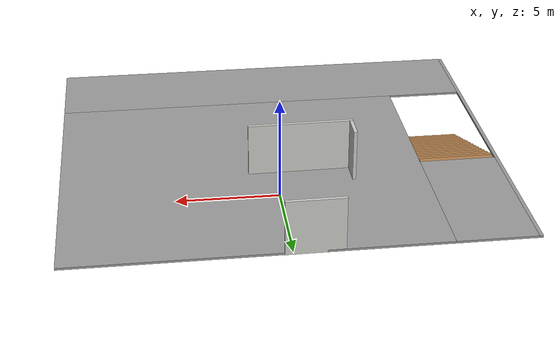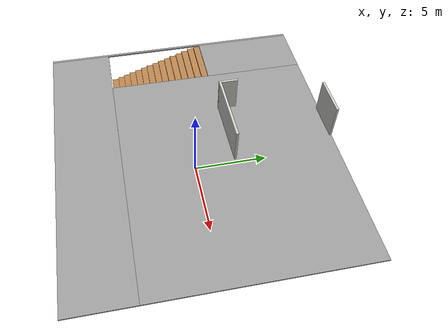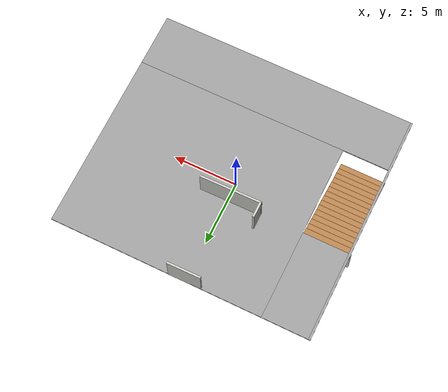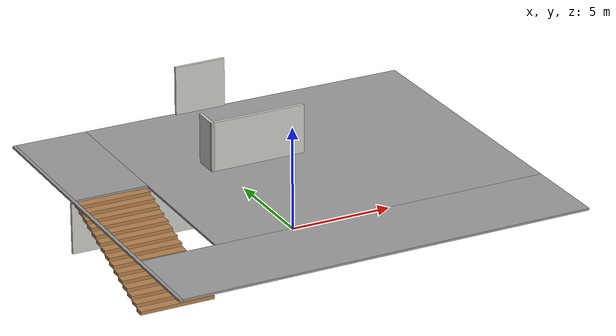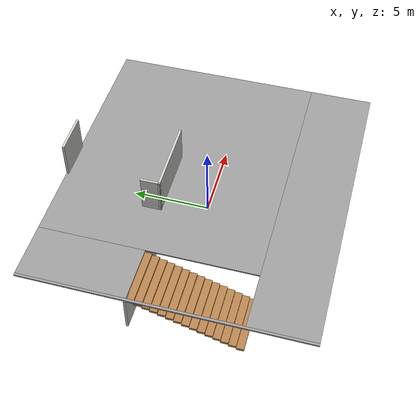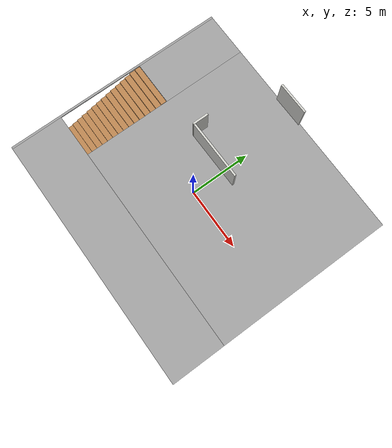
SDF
<sdf version="1.6">
 <model name="home_human">
  <link name="Floor_1">
   <pose>0.111176 -0.025995 2.5 0 -0 0</pose>
   <visual name="Floor_1_Visual_1">
    <pose>0.081642 -6.90167 0.05 0 -0 0</pose>
    <geometry><box><size>19.9327 4.15425 0.1</size></box></geometry>
    <material>
     <script><uri>file://media/materials/scripts/gazebo.material</uri><name>Gazebo/Grey</name></script>
     <ambient>1 1 1 1</ambient>
     <shader type="pixel"/>
    </material>
    <meta><layer>1</layer></meta>
   </visual>
   <visual name="Floor_1_Visual_0">
    <pose>-9.96633 0 0.05 0 -0 0</pose>
    <geometry><box><size>0.163285 17.9576 0.1</size></box></geometry>
    <material>
     <script><uri>file://media/materials/scripts/gazebo.material</uri><name>Gazebo/Grey</name></script>
     <ambient>1 1 1 1</ambient>
     <shader type="pixel"/>
    </material>
    <meta><layer>1</layer></meta>
   </visual>
   <visual name="Floor_1_Visual_2">
    <pose>1.84664 2.07713 0.05 0 -0 0</pose>
    <geometry><box><size>16.4027 13.8033 0.1</size></box></geometry>
    <material>
     <script><uri>file://media/materials/scripts/gazebo.material</uri><name>Gazebo/Grey</name></script>
     <ambient>1 1 1 1</ambient>
     <shader type="pixel"/>
    </material>
    <meta><layer>1</layer></meta>
   </visual>
   <visual name="Floor_1_Visual_3">
    <pose>-8.11969 5.56778 0.05 0 -0 0</pose>
    <geometry><box><size>3.53 6.82204 0.1</size></box></geometry>
    <material>
     <script><uri>file://media/materials/scripts/gazebo.material</uri><name>Gazebo/Grey</name></script>
     <ambient>1 1 1 1</ambient>
     <shader type="pixel"/>
    </material>
    <meta><layer>1</layer></meta>
   </visual>
   <collision name="Floor_1_Collision_2">
    <pose>1.84664 2.07713 0.05 0 -0 0</pose>
    <geometry><box><size>16.4027 13.8033 0.1</size></box></geometry>
    <surface>
     <friction>
      <ode><mu>1</mu><mu2>1</mu2><fdir1>0 0 0</fdir1><slip1>0</slip1><slip2>0</slip2></ode>
      <torsional>
       <coefficient>1</coefficient>
       <patch_radius>0</patch_radius>
       <surface_radius>0</surface_radius>
       <use_patch_radius>1</use_patch_radius>
       <ode><slip>0</slip></ode>
      </torsional>
     </friction>
     <bounce><restitution_coefficient>0</restitution_coefficient><threshold>1e+06</threshold></bounce>
     <contact>
      <collide_without_contact>0</collide_without_contact>
      <collide_without_contact_bitmask>1</collide_without_contact_bitmask>
      <collide_bitmask>1</collide_bitmask>
      <ode>
       <soft_cfm>0</soft_cfm>
       <soft_erp>0.2</soft_erp>
       <kp>1e+13</kp>
       <kd>1</kd>
       <max_vel>0.01</max_vel>
       <min_depth>0</min_depth>
      </ode>
      <bullet>
       <split_impulse>1</split_impulse>
       <split_impulse_penetration_threshold>-0.01</split_impulse_penetration_threshold>
       <soft_cfm>0</soft_cfm>
       <soft_erp>0.2</soft_erp>
       <kp>1e+13</kp>
       <kd>1</kd>
      </bullet>
     </contact>
    </surface>
   </collision>
   <collision name="Floor_1_Collision_1">
    <pose>0.081642 -6.90167 0.05 0 -0 0</pose>
    <geometry><box><size>19.9327 4.15425 0.1</size></box></geometry>
    <surface>
     <friction>
      <ode><mu>1</mu><mu2>1</mu2><fdir1>0 0 0</fdir1><slip1>0</slip1><slip2>0</slip2></ode>
      <torsional>
       <coefficient>1</coefficient>
       <patch_radius>0</patch_radius>
       <surface_radius>0</surface_radius>
       <use_patch_radius>1</use_patch_radius>
       <ode><slip>0</slip></ode>
      </torsional>
     </friction>
     <bounce><restitution_coefficient>0</restitution_coefficient><threshold>1e+06</threshold></bounce>
     <contact>
      <collide_without_contact>0</collide_without_contact>
      <collide_without_contact_bitmask>1</collide_without_contact_bitmask>
      <collide_bitmask>1</collide_bitmask>
      <ode>
       <soft_cfm>0</soft_cfm>
       <soft_erp>0.2</soft_erp>
       <kp>1e+13</kp>
       <kd>1</kd>
       <max_vel>0.01</max_vel>
       <min_depth>0</min_depth>
      </ode>
      <bullet>
       <split_impulse>1</split_impulse>
       <split_impulse_penetration_threshold>-0.01</split_impulse_penetration_threshold>
       <soft_cfm>0</soft_cfm>
       <soft_erp>0.2</soft_erp>
       <kp>1e+13</kp>
       <kd>1</kd>
      </bullet>
     </contact>
    </surface>
   </collision>
   <collision name="Floor_1_Collision_0">
    <pose>-9.96633 0 0.05 0 -0 0</pose>
    <geometry><box><size>0.163285 17.9576 0.1</size></box></geometry>
    <surface>
     <friction>
      <ode><mu>1</mu><mu2>1</mu2><fdir1>0 0 0</fdir1><slip1>0</slip1><slip2>0</slip2></ode>
      <torsional>
       <coefficient>1</coefficient>
       <patch_radius>0</patch_radius>
       <surface_radius>0</surface_radius>
       <use_patch_radius>1</use_patch_radius>
       <ode><slip>0</slip></ode>
      </torsional>
     </friction>
     <bounce><restitution_coefficient>0</restitution_coefficient><threshold>1e+06</threshold></bounce>
     <contact>
      <collide_without_contact>0</collide_without_contact>
      <collide_without_contact_bitmask>1</collide_without_contact_bitmask>
      <collide_bitmask>1</collide_bitmask>
      <ode>
       <soft_cfm>0</soft_cfm>
       <soft_erp>0.2</soft_erp>
       <kp>1e+13</kp>
       <kd>1</kd>
       <max_vel>0.01</max_vel>
       <min_depth>0</min_depth>
      </ode>
      <bullet>
       <split_impulse>1</split_impulse>
       <split_impulse_penetration_threshold>-0.01</split_impulse_penetration_threshold>
       <soft_cfm>0</soft_cfm>
       <soft_erp>0.2</soft_erp>
       <kp>1e+13</kp>
       <kd>1</kd>
      </bullet>
     </contact>
    </surface>
   </collision>
   <collision name="Floor_1_Collision_3">
    <pose>-8.11969 5.56778 0.05 0 -0 0</pose>
    <geometry><box><size>3.53 6.82204 0.1</size></box></geometry>
    <surface>
     <friction>
      <ode><mu>1</mu><mu2>1</mu2><fdir1>0 0 0</fdir1><slip1>0</slip1><slip2>0</slip2></ode>
      <torsional>
       <coefficient>1</coefficient>
       <patch_radius>0</patch_radius>
       <surface_radius>0</surface_radius>
       <use_patch_radius>1</use_patch_radius>
       <ode><slip>0</slip></ode>
      </torsional>
     </friction>
     <bounce><restitution_coefficient>0</restitution_coefficient><threshold>1e+06</threshold></bounce>
     <contact>
      <collide_without_contact>0</collide_without_contact>
      <collide_without_contact_bitmask>1</collide_without_contact_bitmask>
      <collide_bitmask>1</collide_bitmask>
      <ode>
       <soft_cfm>0</soft_cfm>
       <soft_erp>0.2</soft_erp>
       <kp>1e+13</kp>
       <kd>1</kd>
       <max_vel>0.01</max_vel>
       <min_depth>0</min_depth>
      </ode>
      <bullet>
       <split_impulse>1</split_impulse>
       <split_impulse_penetration_threshold>-0.01</split_impulse_penetration_threshold>
       <soft_cfm>0</soft_cfm>
       <soft_erp>0.2</soft_erp>
       <kp>1e+13</kp>
       <kd>1</kd>
      </bullet>
     </contact>
    </surface>
   </collision>
  </link>
  <link name="Stairs_0">
   <visual name="Stairs_0_Visual_13">
    <pose>-8.0684 1.44808 2.25 0 -0 -3.14159</pose>
    <geometry><box><size>3.53 0.46542 0.166667</size></box></geometry>
    <material>
     <script><uri>file://media/materials/scripts/gazebo.material</uri><name>Gazebo/Wood</name></script>
     <ambient>1 1 1 1</ambient>
     <shader type="pixel"/>
    </material>
    <meta><layer>0</layer></meta>
   </visual>
   <visual name="Stairs_0_Visual_1">
    <pose>-8.0684 -4.13696 0.25 0 -0 -3.14159</pose>
    <geometry><box><size>3.53 0.46542 0.166667</size></box></geometry>
    <material>
     <script><uri>file://media/materials/scripts/gazebo.material</uri><name>Gazebo/Wood</name></script>
     <ambient>1 1 1 1</ambient>
     <shader type="pixel"/>
    </material>
    <meta><layer>0</layer></meta>
   </visual>
   <visual name="Stairs_0_Visual_10">
    <pose>-8.0684 0.051817 1.75 0 -0 -3.14159</pose>
    <geometry><box><size>3.53 0.46542 0.166667</size></box></geometry>
    <material>
     <script><uri>file://media/materials/scripts/gazebo.material</uri><name>Gazebo/Wood</name></script>
     <ambient>1 1 1 1</ambient>
     <shader type="pixel"/>
    </material>
    <meta><layer>0</layer></meta>
   </visual>
   <visual name="Stairs_0_Visual_8">
    <pose>-8.0684 -0.879023 1.41667 0 -0 -3.14159</pose>
    <geometry><box><size>3.53 0.46542 0.166667</size></box></geometry>
    <material>
     <script><uri>file://media/materials/scripts/gazebo.material</uri><name>Gazebo/Wood</name></script>
     <ambient>1 1 1 1</ambient>
     <shader type="pixel"/>
    </material>
    <meta><layer>0</layer></meta>
   </visual>
   <visual name="Stairs_0_Visual_0">
    <pose>-8.0684 -4.60238 0.083333 0 -0 -3.14159</pose>
    <geometry><box><size>3.53 0.46542 0.166667</size></box></geometry>
    <material>
     <script><uri>file://media/materials/scripts/gazebo.material</uri><name>Gazebo/Wood</name></script>
     <ambient>1 1 1 1</ambient>
     <shader type="pixel"/>
    </material>
    <meta><layer>0</layer></meta>
   </visual>
   <visual name="Stairs_0_Visual_14">
    <pose>-8.0684 1.9135 2.41667 0 -0 -3.14159</pose>
    <geometry><box><size>3.53 0.46542 0.166667</size></box></geometry>
    <material>
     <script><uri>file://media/materials/scripts/gazebo.material</uri><name>Gazebo/Wood</name></script>
     <ambient>1 1 1 1</ambient>
     <shader type="pixel"/>
    </material>
    <meta><layer>0</layer></meta>
   </visual>
   <visual name="Stairs_0_Visual_5">
    <pose>-8.0684 -2.27528 0.916667 0 -0 -3.14159</pose>
    <geometry><box><size>3.53 0.46542 0.166667</size></box></geometry>
    <material>
     <script><uri>file://media/materials/scripts/gazebo.material</uri><name>Gazebo/Wood</name></script>
     <ambient>1 1 1 1</ambient>
     <shader type="pixel"/>
    </material>
    <meta><layer>0</layer></meta>
   </visual>
   <visual name="Stairs_0_Visual_11">
    <pose>-8.0684 0.517237 1.91667 0 -0 -3.14159</pose>
    <geometry><box><size>3.53 0.46542 0.166667</size></box></geometry>
    <material>
     <script><uri>file://media/materials/scripts/gazebo.material</uri><name>Gazebo/Wood</name></script>
     <ambient>1 1 1 1</ambient>
     <shader type="pixel"/>
    </material>
    <meta><layer>0</layer></meta>
   </visual>
   <visual name="Stairs_0_Visual_2">
    <pose>-8.0684 -3.67154 0.416667 0 -0 -3.14159</pose>
    <geometry><box><size>3.53 0.46542 0.166667</size></box></geometry>
    <material>
     <script><uri>file://media/materials/scripts/gazebo.material</uri><name>Gazebo/Wood</name></script>
     <ambient>1 1 1 1</ambient>
     <shader type="pixel"/>
    </material>
    <meta><layer>0</layer></meta>
   </visual>
   <visual name="Stairs_0_Visual_7">
    <pose>-8.0684 -1.34444 1.25 0 -0 -3.14159</pose>
    <geometry><box><size>3.53 0.46542 0.166667</size></box></geometry>
    <material>
     <script><uri>file://media/materials/scripts/gazebo.material</uri><name>Gazebo/Wood</name></script>
     <ambient>1 1 1 1</ambient>
     <shader type="pixel"/>
    </material>
    <meta><layer>0</layer></meta>
   </visual>
   <visual name="Stairs_0_Visual_12">
    <pose>-8.0684 0.982657 2.08333 0 -0 -3.14159</pose>
    <geometry><box><size>3.53 0.46542 0.166667</size></box></geometry>
    <material>
     <script><uri>file://media/materials/scripts/gazebo.material</uri><name>Gazebo/Wood</name></script>
     <ambient>1 1 1 1</ambient>
     <shader type="pixel"/>
    </material>
    <meta><layer>0</layer></meta>
   </visual>
   <visual name="Stairs_0_Visual_3">
    <pose>-8.0684 -3.20612 0.583333 0 -0 -3.14159</pose>
    <geometry><box><size>3.53 0.46542 0.166667</size></box></geometry>
    <material>
     <script><uri>file://media/materials/scripts/gazebo.material</uri><name>Gazebo/Wood</name></script>
     <ambient>1 1 1 1</ambient>
     <shader type="pixel"/>
    </material>
    <meta><layer>0</layer></meta>
   </visual>
   <visual name="Stairs_0_Visual_9">
    <pose>-8.0684 -0.413603 1.58333 0 -0 -3.14159</pose>
    <geometry><box><size>3.53 0.46542 0.166667</size></box></geometry>
    <material>
     <script><uri>file://media/materials/scripts/gazebo.material</uri><name>Gazebo/Wood</name></script>
     <ambient>1 1 1 1</ambient>
     <shader type="pixel"/>
    </material>
    <meta><layer>0</layer></meta>
   </visual>
   <visual name="Stairs_0_Visual_6">
    <pose>-8.0684 -1.80986 1.08333 0 -0 -3.14159</pose>
    <geometry><box><size>3.53 0.46542 0.166667</size></box></geometry>
    <material>
     <script><uri>file://media/materials/scripts/gazebo.material</uri><name>Gazebo/Wood</name></script>
     <ambient>1 1 1 1</ambient>
     <shader type="pixel"/>
    </material>
    <meta><layer>0</layer></meta>
   </visual>
   <visual name="Stairs_0_Visual_4">
    <pose>-8.0684 -2.7407 0.75 0 -0 -3.14159</pose>
    <geometry><box><size>3.53 0.46542 0.166667</size></box></geometry>
    <material>
     <script><uri>file://media/materials/scripts/gazebo.material</uri><name>Gazebo/Wood</name></script>
     <ambient>1 1 1 1</ambient>
     <shader type="pixel"/>
    </material>
    <meta><layer>0</layer></meta>
   </visual>
   <collision name="Stairs_0_Collision_0">
    <pose>-8.0684 -4.60238 0.083333 0 0 -3.14159</pose>
    <geometry><box><size>3.53 0.46542 0.166667</size></box></geometry>
    <surface>
     <friction>
      <ode><mu>1</mu><mu2>1</mu2><fdir1>0 0 0</fdir1><slip1>0</slip1><slip2>0</slip2></ode>
      <torsional>
       <coefficient>1</coefficient>
       <patch_radius>0</patch_radius>
       <surface_radius>0</surface_radius>
       <use_patch_radius>1</use_patch_radius>
       <ode><slip>0</slip></ode>
      </torsional>
     </friction>
     <bounce><restitution_coefficient>0</restitution_coefficient><threshold>1e+06</threshold></bounce>
     <contact>
      <collide_without_contact>0</collide_without_contact>
      <collide_without_contact_bitmask>1</collide_without_contact_bitmask>
      <collide_bitmask>1</collide_bitmask>
      <ode>
       <soft_cfm>0</soft_cfm>
       <soft_erp>0.2</soft_erp>
       <kp>1e+13</kp>
       <kd>1</kd>
       <max_vel>0.01</max_vel>
       <min_depth>0</min_depth>
      </ode>
      <bullet>
       <split_impulse>1</split_impulse>
       <split_impulse_penetration_threshold>-0.01</split_impulse_penetration_threshold>
       <soft_cfm>0</soft_cfm>
       <soft_erp>0.2</soft_erp>
       <kp>1e+13</kp>
       <kd>1</kd>
      </bullet>
     </contact>
    </surface>
   </collision>
   <collision name="Stairs_0_Collision_8">
    <pose>-8.0684 -0.879023 1.41667 0 0 -3.14159</pose>
    <geometry><box><size>3.53 0.46542 0.166667</size></box></geometry>
    <surface>
     <friction>
      <ode><mu>1</mu><mu2>1</mu2><fdir1>0 0 0</fdir1><slip1>0</slip1><slip2>0</slip2></ode>
      <torsional>
       <coefficient>1</coefficient>
       <patch_radius>0</patch_radius>
       <surface_radius>0</surface_radius>
       <use_patch_radius>1</use_patch_radius>
       <ode><slip>0</slip></ode>
      </torsional>
     </friction>
     <bounce><restitution_coefficient>0</restitution_coefficient><threshold>1e+06</threshold></bounce>
     <contact>
      <collide_without_contact>0</collide_without_contact>
      <collide_without_contact_bitmask>1</collide_without_contact_bitmask>
      <collide_bitmask>1</collide_bitmask>
      <ode>
       <soft_cfm>0</soft_cfm>
       <soft_erp>0.2</soft_erp>
       <kp>1e+13</kp>
       <kd>1</kd>
       <max_vel>0.01</max_vel>
       <min_depth>0</min_depth>
      </ode>
      <bullet>
       <split_impulse>1</split_impulse>
       <split_impulse_penetration_threshold>-0.01</split_impulse_penetration_threshold>
       <soft_cfm>0</soft_cfm>
       <soft_erp>0.2</soft_erp>
       <kp>1e+13</kp>
       <kd>1</kd>
      </bullet>
     </contact>
    </surface>
   </collision>
   <collision name="Stairs_0_Collision_1">
    <pose>-8.0684 -4.13696 0.25 0 0 -3.14159</pose>
    <geometry><box><size>3.53 0.46542 0.166667</size></box></geometry>
    <surface>
     <friction>
      <ode><mu>1</mu><mu2>1</mu2><fdir1>0 0 0</fdir1><slip1>0</slip1><slip2>0</slip2></ode>
      <torsional>
       <coefficient>1</coefficient>
       <patch_radius>0</patch_radius>
       <surface_radius>0</surface_radius>
       <use_patch_radius>1</use_patch_radius>
       <ode><slip>0</slip></ode>
      </torsional>
     </friction>
     <bounce><restitution_coefficient>0</restitution_coefficient><threshold>1e+06</threshold></bounce>
     <contact>
      <collide_without_contact>0</collide_without_contact>
      <collide_without_contact_bitmask>1</collide_without_contact_bitmask>
      <collide_bitmask>1</collide_bitmask>
      <ode>
       <soft_cfm>0</soft_cfm>
       <soft_erp>0.2</soft_erp>
       <kp>1e+13</kp>
       <kd>1</kd>
       <max_vel>0.01</max_vel>
       <min_depth>0</min_depth>
      </ode>
      <bullet>
       <split_impulse>1</split_impulse>
       <split_impulse_penetration_threshold>-0.01</split_impulse_penetration_threshold>
       <soft_cfm>0</soft_cfm>
       <soft_erp>0.2</soft_erp>
       <kp>1e+13</kp>
       <kd>1</kd>
      </bullet>
     </contact>
    </surface>
   </collision>
   <collision name="Stairs_0_Collision_6">
    <pose>-8.0684 -1.80986 1.08333 0 0 -3.14159</pose>
    <geometry><box><size>3.53 0.46542 0.166667</size></box></geometry>
    <surface>
     <friction>
      <ode><mu>1</mu><mu2>1</mu2><fdir1>0 0 0</fdir1><slip1>0</slip1><slip2>0</slip2></ode>
      <torsional>
       <coefficient>1</coefficient>
       <patch_radius>0</patch_radius>
       <surface_radius>0</surface_radius>
       <use_patch_radius>1</use_patch_radius>
       <ode><slip>0</slip></ode>
      </torsional>
     </friction>
     <bounce><restitution_coefficient>0</restitution_coefficient><threshold>1e+06</threshold></bounce>
     <contact>
      <collide_without_contact>0</collide_without_contact>
      <collide_without_contact_bitmask>1</collide_without_contact_bitmask>
      <collide_bitmask>1</collide_bitmask>
      <ode>
       <soft_cfm>0</soft_cfm>
       <soft_erp>0.2</soft_erp>
       <kp>1e+13</kp>
       <kd>1</kd>
       <max_vel>0.01</max_vel>
       <min_depth>0</min_depth>
      </ode>
      <bullet>
       <split_impulse>1</split_impulse>
       <split_impulse_penetration_threshold>-0.01</split_impulse_penetration_threshold>
       <soft_cfm>0</soft_cfm>
       <soft_erp>0.2</soft_erp>
       <kp>1e+13</kp>
       <kd>1</kd>
      </bullet>
     </contact>
    </surface>
   </collision>
   <collision name="Stairs_0_Collision_2">
    <pose>-8.0684 -3.67154 0.416667 0 0 -3.14159</pose>
    <geometry><box><size>3.53 0.46542 0.166667</size></box></geometry>
    <surface>
     <friction>
      <ode><mu>1</mu><mu2>1</mu2><fdir1>0 0 0</fdir1><slip1>0</slip1><slip2>0</slip2></ode>
      <torsional>
       <coefficient>1</coefficient>
       <patch_radius>0</patch_radius>
       <surface_radius>0</surface_radius>
       <use_patch_radius>1</use_patch_radius>
       <ode><slip>0</slip></ode>
      </torsional>
     </friction>
     <bounce><restitution_coefficient>0</restitution_coefficient><threshold>1e+06</threshold></bounce>
     <contact>
      <collide_without_contact>0</collide_without_contact>
      <collide_without_contact_bitmask>1</collide_without_contact_bitmask>
      <collide_bitmask>1</collide_bitmask>
      <ode>
       <soft_cfm>0</soft_cfm>
       <soft_erp>0.2</soft_erp>
       <kp>1e+13</kp>
       <kd>1</kd>
       <max_vel>0.01</max_vel>
       <min_depth>0</min_depth>
      </ode>
      <bullet>
       <split_impulse>1</split_impulse>
       <split_impulse_penetration_threshold>-0.01</split_impulse_penetration_threshold>
       <soft_cfm>0</soft_cfm>
       <soft_erp>0.2</soft_erp>
       <kp>1e+13</kp>
       <kd>1</kd>
      </bullet>
     </contact>
    </surface>
   </collision>
   <collision name="Stairs_0_Collision_3">
    <pose>-8.0684 -3.20612 0.583333 0 0 -3.14159</pose>
    <geometry><box><size>3.53 0.46542 0.166667</size></box></geometry>
    <surface>
     <friction>
      <ode><mu>1</mu><mu2>1</mu2><fdir1>0 0 0</fdir1><slip1>0</slip1><slip2>0</slip2></ode>
      <torsional>
       <coefficient>1</coefficient>
       <patch_radius>0</patch_radius>
       <surface_radius>0</surface_radius>
       <use_patch_radius>1</use_patch_radius>
       <ode><slip>0</slip></ode>
      </torsional>
     </friction>
     <bounce><restitution_coefficient>0</restitution_coefficient><threshold>1e+06</threshold></bounce>
     <contact>
      <collide_without_contact>0</collide_without_contact>
      <collide_without_contact_bitmask>1</collide_without_contact_bitmask>
      <collide_bitmask>1</collide_bitmask>
      <ode>
       <soft_cfm>0</soft_cfm>
       <soft_erp>0.2</soft_erp>
       <kp>1e+13</kp>
       <kd>1</kd>
       <max_vel>0.01</max_vel>
       <min_depth>0</min_depth>
      </ode>
      <bullet>
       <split_impulse>1</split_impulse>
       <split_impulse_penetration_threshold>-0.01</split_impulse_penetration_threshold>
       <soft_cfm>0</soft_cfm>
       <soft_erp>0.2</soft_erp>
       <kp>1e+13</kp>
       <kd>1</kd>
      </bullet>
     </contact>
    </surface>
   </collision>
   <collision name="Stairs_0_Collision_13">
    <pose>-8.0684 1.44808 2.25 0 0 -3.14159</pose>
    <geometry><box><size>3.53 0.46542 0.166667</size></box></geometry>
    <surface>
     <friction>
      <ode><mu>1</mu><mu2>1</mu2><fdir1>0 0 0</fdir1><slip1>0</slip1><slip2>0</slip2></ode>
      <torsional>
       <coefficient>1</coefficient>
       <patch_radius>0</patch_radius>
       <surface_radius>0</surface_radius>
       <use_patch_radius>1</use_patch_radius>
       <ode><slip>0</slip></ode>
      </torsional>
     </friction>
     <bounce><restitution_coefficient>0</restitution_coefficient><threshold>1e+06</threshold></bounce>
     <contact>
      <collide_without_contact>0</collide_without_contact>
      <collide_without_contact_bitmask>1</collide_without_contact_bitmask>
      <collide_bitmask>1</collide_bitmask>
      <ode>
       <soft_cfm>0</soft_cfm>
       <soft_erp>0.2</soft_erp>
       <kp>1e+13</kp>
       <kd>1</kd>
       <max_vel>0.01</max_vel>
       <min_depth>0</min_depth>
      </ode>
      <bullet>
       <split_impulse>1</split_impulse>
       <split_impulse_penetration_threshold>-0.01</split_impulse_penetration_threshold>
       <soft_cfm>0</soft_cfm>
       <soft_erp>0.2</soft_erp>
       <kp>1e+13</kp>
       <kd>1</kd>
      </bullet>
     </contact>
    </surface>
   </collision>
   <collision name="Stairs_0_Collision_10">
    <pose>-8.0684 0.051817 1.75 0 0 -3.14159</pose>
    <geometry><box><size>3.53 0.46542 0.166667</size></box></geometry>
    <surface>
     <friction>
      <ode><mu>1</mu><mu2>1</mu2><fdir1>0 0 0</fdir1><slip1>0</slip1><slip2>0</slip2></ode>
      <torsional>
       <coefficient>1</coefficient>
       <patch_radius>0</patch_radius>
       <surface_radius>0</surface_radius>
       <use_patch_radius>1</use_patch_radius>
       <ode><slip>0</slip></ode>
      </torsional>
     </friction>
     <bounce><restitution_coefficient>0</restitution_coefficient><threshold>1e+06</threshold></bounce>
     <contact>
      <collide_without_contact>0</collide_without_contact>
      <collide_without_contact_bitmask>1</collide_without_contact_bitmask>
      <collide_bitmask>1</collide_bitmask>
      <ode>
       <soft_cfm>0</soft_cfm>
       <soft_erp>0.2</soft_erp>
       <kp>1e+13</kp>
       <kd>1</kd>
       <max_vel>0.01</max_vel>
       <min_depth>0</min_depth>
      </ode>
      <bullet>
       <split_impulse>1</split_impulse>
       <split_impulse_penetration_threshold>-0.01</split_impulse_penetration_threshold>
       <soft_cfm>0</soft_cfm>
       <soft_erp>0.2</soft_erp>
       <kp>1e+13</kp>
       <kd>1</kd>
      </bullet>
     </contact>
    </surface>
   </collision>
   <collision name="Stairs_0_Collision_9">
    <pose>-8.0684 -0.413603 1.58333 0 0 -3.14159</pose>
    <geometry><box><size>3.53 0.46542 0.166667</size></box></geometry>
    <surface>
     <friction>
      <ode><mu>1</mu><mu2>1</mu2><fdir1>0 0 0</fdir1><slip1>0</slip1><slip2>0</slip2></ode>
      <torsional>
       <coefficient>1</coefficient>
       <patch_radius>0</patch_radius>
       <surface_radius>0</surface_radius>
       <use_patch_radius>1</use_patch_radius>
       <ode><slip>0</slip></ode>
      </torsional>
     </friction>
     <bounce><restitution_coefficient>0</restitution_coefficient><threshold>1e+06</threshold></bounce>
     <contact>
      <collide_without_contact>0</collide_without_contact>
      <collide_without_contact_bitmask>1</collide_without_contact_bitmask>
      <collide_bitmask>1</collide_bitmask>
      <ode>
       <soft_cfm>0</soft_cfm>
       <soft_erp>0.2</soft_erp>
       <kp>1e+13</kp>
       <kd>1</kd>
       <max_vel>0.01</max_vel>
       <min_depth>0</min_depth>
      </ode>
      <bullet>
       <split_impulse>1</split_impulse>
       <split_impulse_penetration_threshold>-0.01</split_impulse_penetration_threshold>
       <soft_cfm>0</soft_cfm>
       <soft_erp>0.2</soft_erp>
       <kp>1e+13</kp>
       <kd>1</kd>
      </bullet>
     </contact>
    </surface>
   </collision>
   <collision name="Stairs_0_Collision_7">
    <pose>-8.0684 -1.34444 1.25 0 0 -3.14159</pose>
    <geometry><box><size>3.53 0.46542 0.166667</size></box></geometry>
    <surface>
     <friction>
      <ode><mu>1</mu><mu2>1</mu2><fdir1>0 0 0</fdir1><slip1>0</slip1><slip2>0</slip2></ode>
      <torsional>
       <coefficient>1</coefficient>
       <patch_radius>0</patch_radius>
       <surface_radius>0</surface_radius>
       <use_patch_radius>1</use_patch_radius>
       <ode><slip>0</slip></ode>
      </torsional>
     </friction>
     <bounce><restitution_coefficient>0</restitution_coefficient><threshold>1e+06</threshold></bounce>
     <contact>
      <collide_without_contact>0</collide_without_contact>
      <collide_without_contact_bitmask>1</collide_without_contact_bitmask>
      <collide_bitmask>1</collide_bitmask>
      <ode>
       <soft_cfm>0</soft_cfm>
       <soft_erp>0.2</soft_erp>
       <kp>1e+13</kp>
       <kd>1</kd>
       <max_vel>0.01</max_vel>
       <min_depth>0</min_depth>
      </ode>
      <bullet>
       <split_impulse>1</split_impulse>
       <split_impulse_penetration_threshold>-0.01</split_impulse_penetration_threshold>
       <soft_cfm>0</soft_cfm>
       <soft_erp>0.2</soft_erp>
       <kp>1e+13</kp>
       <kd>1</kd>
      </bullet>
     </contact>
    </surface>
   </collision>
   <collision name="Stairs_0_Collision_14">
    <pose>-8.0684 1.9135 2.41667 0 0 -3.14159</pose>
    <geometry><box><size>3.53 0.46542 0.166667</size></box></geometry>
    <surface>
     <friction>
      <ode><mu>1</mu><mu2>1</mu2><fdir1>0 0 0</fdir1><slip1>0</slip1><slip2>0</slip2></ode>
      <torsional>
       <coefficient>1</coefficient>
       <patch_radius>0</patch_radius>
       <surface_radius>0</surface_radius>
       <use_patch_radius>1</use_patch_radius>
       <ode><slip>0</slip></ode>
      </torsional>
     </friction>
     <bounce><restitution_coefficient>0</restitution_coefficient><threshold>1e+06</threshold></bounce>
     <contact>
      <collide_without_contact>0</collide_without_contact>
      <collide_without_contact_bitmask>1</collide_without_contact_bitmask>
      <collide_bitmask>1</collide_bitmask>
      <ode>
       <soft_cfm>0</soft_cfm>
       <soft_erp>0.2</soft_erp>
       <kp>1e+13</kp>
       <kd>1</kd>
       <max_vel>0.01</max_vel>
       <min_depth>0</min_depth>
      </ode>
      <bullet>
       <split_impulse>1</split_impulse>
       <split_impulse_penetration_threshold>-0.01</split_impulse_penetration_threshold>
       <soft_cfm>0</soft_cfm>
       <soft_erp>0.2</soft_erp>
       <kp>1e+13</kp>
       <kd>1</kd>
      </bullet>
     </contact>
    </surface>
   </collision>
   <collision name="Stairs_0_Collision_12">
    <pose>-8.0684 0.982657 2.08333 0 0 -3.14159</pose>
    <geometry><box><size>3.53 0.46542 0.166667</size></box></geometry>
    <surface>
     <friction>
      <ode><mu>1</mu><mu2>1</mu2><fdir1>0 0 0</fdir1><slip1>0</slip1><slip2>0</slip2></ode>
      <torsional>
       <coefficient>1</coefficient>
       <patch_radius>0</patch_radius>
       <surface_radius>0</surface_radius>
       <use_patch_radius>1</use_patch_radius>
       <ode><slip>0</slip></ode>
      </torsional>
     </friction>
     <bounce><restitution_coefficient>0</restitution_coefficient><threshold>1e+06</threshold></bounce>
     <contact>
      <collide_without_contact>0</collide_without_contact>
      <collide_without_contact_bitmask>1</collide_without_contact_bitmask>
      <collide_bitmask>1</collide_bitmask>
      <ode>
       <soft_cfm>0</soft_cfm>
       <soft_erp>0.2</soft_erp>
       <kp>1e+13</kp>
       <kd>1</kd>
       <max_vel>0.01</max_vel>
       <min_depth>0</min_depth>
      </ode>
      <bullet>
       <split_impulse>1</split_impulse>
       <split_impulse_penetration_threshold>-0.01</split_impulse_penetration_threshold>
       <soft_cfm>0</soft_cfm>
       <soft_erp>0.2</soft_erp>
       <kp>1e+13</kp>
       <kd>1</kd>
      </bullet>
     </contact>
    </surface>
   </collision>
   <collision name="Stairs_0_Collision_4">
    <pose>-8.0684 -2.7407 0.75 0 0 -3.14159</pose>
    <geometry><box><size>3.53 0.46542 0.166667</size></box></geometry>
    <surface>
     <friction>
      <ode><mu>1</mu><mu2>1</mu2><fdir1>0 0 0</fdir1><slip1>0</slip1><slip2>0</slip2></ode>
      <torsional>
       <coefficient>1</coefficient>
       <patch_radius>0</patch_radius>
       <surface_radius>0</surface_radius>
       <use_patch_radius>1</use_patch_radius>
       <ode><slip>0</slip></ode>
      </torsional>
     </friction>
     <bounce><restitution_coefficient>0</restitution_coefficient><threshold>1e+06</threshold></bounce>
     <contact>
      <collide_without_contact>0</collide_without_contact>
      <collide_without_contact_bitmask>1</collide_without_contact_bitmask>
      <collide_bitmask>1</collide_bitmask>
      <ode>
       <soft_cfm>0</soft_cfm>
       <soft_erp>0.2</soft_erp>
       <kp>1e+13</kp>
       <kd>1</kd>
       <max_vel>0.01</max_vel>
       <min_depth>0</min_depth>
      </ode>
      <bullet>
       <split_impulse>1</split_impulse>
       <split_impulse_penetration_threshold>-0.01</split_impulse_penetration_threshold>
       <soft_cfm>0</soft_cfm>
       <soft_erp>0.2</soft_erp>
       <kp>1e+13</kp>
       <kd>1</kd>
      </bullet>
     </contact>
    </surface>
   </collision>
   <collision name="Stairs_0_Collision_11">
    <pose>-8.0684 0.517237 1.91667 0 0 -3.14159</pose>
    <geometry><box><size>3.53 0.46542 0.166667</size></box></geometry>
    <surface>
     <friction>
      <ode><mu>1</mu><mu2>1</mu2><fdir1>0 0 0</fdir1><slip1>0</slip1><slip2>0</slip2></ode>
      <torsional>
       <coefficient>1</coefficient>
       <patch_radius>0</patch_radius>
       <surface_radius>0</surface_radius>
       <use_patch_radius>1</use_patch_radius>
       <ode><slip>0</slip></ode>
      </torsional>
     </friction>
     <bounce><restitution_coefficient>0</restitution_coefficient><threshold>1e+06</threshold></bounce>
     <contact>
      <collide_without_contact>0</collide_without_contact>
      <collide_without_contact_bitmask>1</collide_without_contact_bitmask>
      <collide_bitmask>1</collide_bitmask>
      <ode>
       <soft_cfm>0</soft_cfm>
       <soft_erp>0.2</soft_erp>
       <kp>1e+13</kp>
       <kd>1</kd>
       <max_vel>0.01</max_vel>
       <min_depth>0</min_depth>
      </ode>
      <bullet>
       <split_impulse>1</split_impulse>
       <split_impulse_penetration_threshold>-0.01</split_impulse_penetration_threshold>
       <soft_cfm>0</soft_cfm>
       <soft_erp>0.2</soft_erp>
       <kp>1e+13</kp>
       <kd>1</kd>
      </bullet>
     </contact>
    </surface>
   </collision>
   <collision name="Stairs_0_Collision_5">
    <pose>-8.0684 -2.27528 0.916667 0 0 -3.14159</pose>
    <geometry><box><size>3.53 0.46542 0.166667</size></box></geometry>
    <surface>
     <friction>
      <ode><mu>1</mu><mu2>1</mu2><fdir1>0 0 0</fdir1><slip1>0</slip1><slip2>0</slip2></ode>
      <torsional>
       <coefficient>1</coefficient>
       <patch_radius>0</patch_radius>
       <surface_radius>0</surface_radius>
       <use_patch_radius>1</use_patch_radius>
       <ode><slip>0</slip></ode>
      </torsional>
     </friction>
     <bounce><restitution_coefficient>0</restitution_coefficient><threshold>1e+06</threshold></bounce>
     <contact>
      <collide_without_contact>0</collide_without_contact>
      <collide_without_contact_bitmask>1</collide_without_contact_bitmask>
      <collide_bitmask>1</collide_bitmask>
      <ode>
       <soft_cfm>0</soft_cfm>
       <soft_erp>0.2</soft_erp>
       <kp>1e+13</kp>
       <kd>1</kd>
       <max_vel>0.01</max_vel>
       <min_depth>0</min_depth>
      </ode>
      <bullet>
       <split_impulse>1</split_impulse>
       <split_impulse_penetration_threshold>-0.01</split_impulse_penetration_threshold>
       <soft_cfm>0</soft_cfm>
       <soft_erp>0.2</soft_erp>
       <kp>1e+13</kp>
       <kd>1</kd>
      </bullet>
     </contact>
    </surface>
   </collision>
  </link>
  <link name="Wall_29">
   <pose>-2.62977 2.17159 0 0 -0 3.14159</pose>
   <visual name="Wall_29_Visual">
    <pose>0 0 1.25 0 -0 0</pose>
    <geometry><box><size>14.7036 0.15 2.5</size></box></geometry>
    <material>
     <script><uri>file://media/materials/scripts/gazebo.material</uri><name>Gazebo/CeilingTiled</name></script>
     <ambient>1 1 1 1</ambient>
     <shader type="pixel"/>
    </material>
    <meta><layer>0</layer></meta>
   </visual>
   <collision name="Wall_29_Collision">
    <pose>0 0 1.25 0 -0 0</pose>
    <geometry><box><size>14.7036 0.15 2.5</size></box></geometry>
    <surface>
     <friction>
      <ode><mu>1</mu><mu2>1</mu2><fdir1>0 0 0</fdir1><slip1>0</slip1><slip2>0</slip2></ode>
      <torsional>
       <coefficient>1</coefficient>
       <patch_radius>0</patch_radius>
       <surface_radius>0</surface_radius>
       <use_patch_radius>1</use_patch_radius>
       <ode><slip>0</slip></ode>
      </torsional>
     </friction>
     <bounce><restitution_coefficient>0</restitution_coefficient><threshold>1e+06</threshold></bounce>
     <contact>
      <collide_without_contact>0</collide_without_contact>
      <collide_without_contact_bitmask>1</collide_without_contact_bitmask>
      <collide_bitmask>1</collide_bitmask>
      <ode>
       <soft_cfm>0</soft_cfm>
       <soft_erp>0.2</soft_erp>
       <kp>1e+13</kp>
       <kd>1</kd>
       <max_vel>0.01</max_vel>
       <min_depth>0</min_depth>
      </ode>
      <bullet>
       <split_impulse>1</split_impulse>
       <split_impulse_penetration_threshold>-0.01</split_impulse_penetration_threshold>
       <soft_cfm>0</soft_cfm>
       <soft_erp>0.2</soft_erp>
       <kp>1e+13</kp>
       <kd>1</kd>
      </bullet>
     </contact>
    </surface>
   </collision>
  </link>
  <link name="Wall_37">
   <pose>-2.06777 -0.248407 0 0 0 -1.5708</pose>
   <visual name="Wall_37_Visual">
    <pose>0 0 1.25 0 -0 0</pose>
    <geometry><box><size>5 0.15 2.5</size></box></geometry>
    <material>
     <script><uri>file://media/materials/scripts/gazebo.material</uri><name>Gazebo/CeilingTiled</name></script>
     <ambient>1 1 1 1</ambient>
     <shader type="pixel"/>
    </material>
    <meta><layer>0</layer></meta>
   </visual>
   <collision name="Wall_37_Collision">
    <pose>0 0 1.25 0 -0 0</pose>
    <geometry><box><size>5 0.15 2.5</size></box></geometry>
    <surface>
     <friction>
      <ode><mu>1</mu><mu2>1</mu2><fdir1>0 0 0</fdir1><slip1>0</slip1><slip2>0</slip2></ode>
      <torsional>
       <coefficient>1</coefficient>
       <patch_radius>0</patch_radius>
       <surface_radius>0</surface_radius>
       <use_patch_radius>1</use_patch_radius>
       <ode><slip>0</slip></ode>
      </torsional>
     </friction>
     <bounce><restitution_coefficient>0</restitution_coefficient><threshold>1e+06</threshold></bounce>
     <contact>
      <collide_without_contact>0</collide_without_contact>
      <collide_without_contact_bitmask>1</collide_without_contact_bitmask>
      <collide_bitmask>1</collide_bitmask>
      <ode>
       <soft_cfm>0</soft_cfm>
       <soft_erp>0.2</soft_erp>
       <kp>1e+13</kp>
       <kd>1</kd>
       <max_vel>0.01</max_vel>
       <min_depth>0</min_depth>
      </ode>
      <bullet>
       <split_impulse>1</split_impulse>
       <split_impulse_penetration_threshold>-0.01</split_impulse_penetration_threshold>
       <soft_cfm>0</soft_cfm>
       <soft_erp>0.2</soft_erp>
       <kp>1e+13</kp>
       <kd>1</kd>
      </bullet>
     </contact>
    </surface>
   </collision>
  </link>
  <link name="Wall_73">
   <pose>-2.94577 2.76059 2.5 0 -0 1.5708</pose>
   <visual name="Wall_73_Visual">
    <pose>0 0 1.25 0 -0 0</pose>
    <geometry><box><size>1.25 0.15 2.5</size></box></geometry>
    <material>
     <script><uri>file://media/materials/scripts/gazebo.material</uri><name>Gazebo/CeilingTiled</name></script>
     <ambient>1 1 1 1</ambient>
     <shader type="pixel"/>
    </material>
    <meta><layer>1</layer></meta>
   </visual>
   <collision name="Wall_73_Collision">
    <pose>0 0 1.25 0 -0 0</pose>
    <geometry><box><size>1.25 0.15 2.5</size></box></geometry>
    <surface>
     <friction>
      <ode><mu>1</mu><mu2>1</mu2><fdir1>0 0 0</fdir1><slip1>0</slip1><slip2>0</slip2></ode>
      <torsional>
       <coefficient>1</coefficient>
       <patch_radius>0</patch_radius>
       <surface_radius>0</surface_radius>
       <use_patch_radius>1</use_patch_radius>
       <ode><slip>0</slip></ode>
      </torsional>
     </friction>
     <bounce><restitution_coefficient>0</restitution_coefficient><threshold>1e+06</threshold></bounce>
     <contact>
      <collide_without_contact>0</collide_without_contact>
      <collide_without_contact_bitmask>1</collide_without_contact_bitmask>
      <collide_bitmask>1</collide_bitmask>
      <ode>
       <soft_cfm>0</soft_cfm>
       <soft_erp>0.2</soft_erp>
       <kp>1e+13</kp>
       <kd>1</kd>
       <max_vel>0.01</max_vel>
       <min_depth>0</min_depth>
      </ode>
      <bullet>
       <split_impulse>1</split_impulse>
       <split_impulse_penetration_threshold>-0.01</split_impulse_penetration_threshold>
       <soft_cfm>0</soft_cfm>
       <soft_erp>0.2</soft_erp>
       <kp>1e+13</kp>
       <kd>1</kd>
      </bullet>
     </contact>
    </surface>
   </collision>
  </link>
  <link name="Wall_84">
   <pose>-0.374771 8.88209 2.5 0 -0 0.008772</pose>
   <visual name="Wall_84_Visual">
    <pose>0 0 1.25 0 -0 0</pose>
    <geometry><box><size>2.5437 0.15 2.5</size></box></geometry>
    <material>
     <script><uri>file://media/materials/scripts/gazebo.material</uri><name>Gazebo/CeilingTiled</name></script>
     <ambient>1 1 1 1</ambient>
     <shader type="pixel"/>
    </material>
    <meta><layer>1</layer></meta>
   </visual>
   <collision name="Wall_84_Collision">
    <pose>0 0 1.25 0 -0 0</pose>
    <geometry><box><size>2.5437 0.15 2.5</size></box></geometry>
    <surface>
     <friction>
      <ode><mu>1</mu><mu2>1</mu2><fdir1>0 0 0</fdir1><slip1>0</slip1><slip2>0</slip2></ode>
      <torsional>
       <coefficient>1</coefficient>
       <patch_radius>0</patch_radius>
       <surface_radius>0</surface_radius>
       <use_patch_radius>1</use_patch_radius>
       <ode><slip>0</slip></ode>
      </torsional>
     </friction>
     <bounce><restitution_coefficient>0</restitution_coefficient><threshold>1e+06</threshold></bounce>
     <contact>
      <collide_without_contact>0</collide_without_contact>
      <collide_without_contact_bitmask>1</collide_without_contact_bitmask>
      <collide_bitmask>1</collide_bitmask>
      <ode>
       <soft_cfm>0</soft_cfm>
       <soft_erp>0.2</soft_erp>
       <kp>1e+13</kp>
       <kd>1</kd>
       <max_vel>0.01</max_vel>
       <min_depth>0</min_depth>
      </ode>
      <bullet>
       <split_impulse>1</split_impulse>
       <split_impulse_penetration_threshold>-0.01</split_impulse_penetration_threshold>
       <soft_cfm>0</soft_cfm>
       <soft_erp>0.2</soft_erp>
       <kp>1e+13</kp>
       <kd>1</kd>
      </bullet>
     </contact>
    </surface>
   </collision>
  </link>
  <link name="Wall_92">
   <pose>-0.657771 2.23409 2.5 0 -0 0.010271</pose>
   <visual name="Wall_92_Visual">
    <pose>0 0 1.25 0 -0 0</pose>
    <geometry><box><size>4.72662 0.15 2.5</size></box></geometry>
    <material>
     <script><uri>file://media/materials/scripts/gazebo.material</uri><name>Gazebo/CeilingTiled</name></script>
     <ambient>1 1 1 1</ambient>
     <shader type="pixel"/>
    </material>
    <meta><layer>1</layer></meta>
   </visual>
   <collision name="Wall_92_Collision">
    <pose>0 0 1.25 0 -0 0</pose>
    <geometry><box><size>4.72662 0.15 2.5</size></box></geometry>
    <surface>
     <friction>
      <ode><mu>1</mu><mu2>1</mu2><fdir1>0 0 0</fdir1><slip1>0</slip1><slip2>0</slip2></ode>
      <torsional>
       <coefficient>1</coefficient>
       <patch_radius>0</patch_radius>
       <surface_radius>0</surface_radius>
       <use_patch_radius>1</use_patch_radius>
       <ode><slip>0</slip></ode>
      </torsional>
     </friction>
     <bounce><restitution_coefficient>0</restitution_coefficient><threshold>1e+06</threshold></bounce>
     <contact>
      <collide_without_contact>0</collide_without_contact>
      <collide_without_contact_bitmask>1</collide_without_contact_bitmask>
      <collide_bitmask>1</collide_bitmask>
      <ode>
       <soft_cfm>0</soft_cfm>
       <soft_erp>0.2</soft_erp>
       <kp>1e+13</kp>
       <kd>1</kd>
       <max_vel>0.01</max_vel>
       <min_depth>0</min_depth>
      </ode>
      <bullet>
       <split_impulse>1</split_impulse>
       <split_impulse_penetration_threshold>-0.01</split_impulse_penetration_threshold>
       <soft_cfm>0</soft_cfm>
       <soft_erp>0.2</soft_erp>
       <kp>1e+13</kp>
       <kd>1</kd>
      </bullet>
     </contact>
    </surface>
   </collision>
  </link>
  <static>1</static>
 </model>
</sdf>
